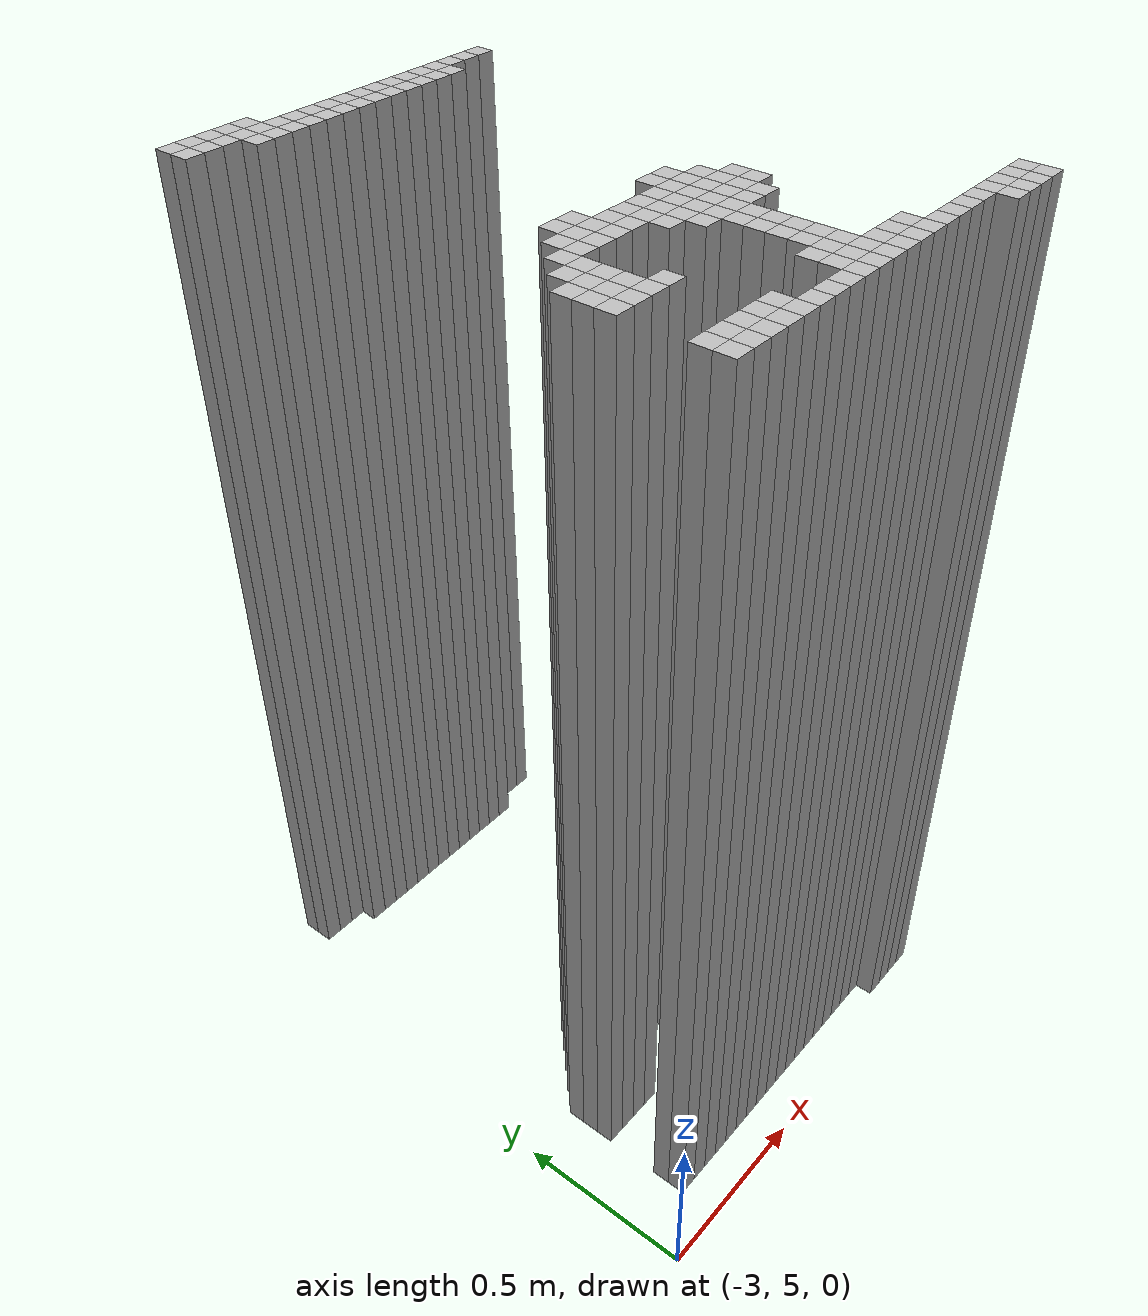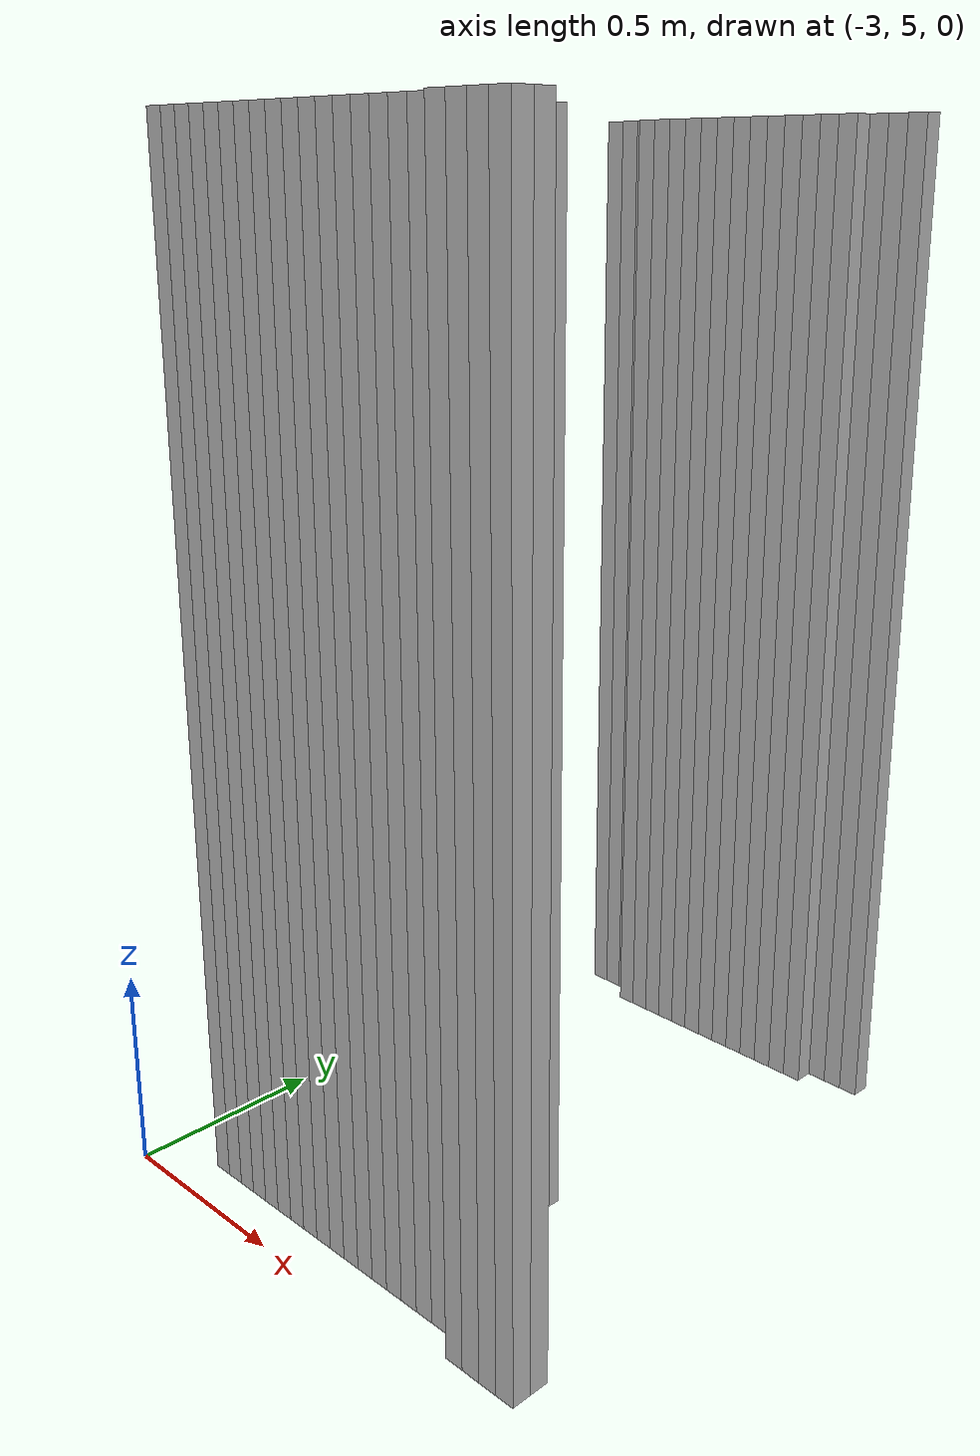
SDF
<sdf version="1.9">
 <world name="map_world">
  <model name="wall_167_22">
   <static>true</static>
   <pose>-2.811 6.580 1.250 0 0 0</pose>
   <link name="link">
    <collision name="collision"><geometry><box><size>0.050 0.050 2.500</size></box></geometry></collision>
    <visual name="visual"><geometry><box><size>0.050 0.050 2.500</size></box></geometry></visual>
   </link>
  </model>
  <model name="wall_168_22">
   <static>true</static>
   <pose>-2.761 6.580 1.250 0 0 0</pose>
   <link name="link">
    <collision name="collision"><geometry><box><size>0.050 0.050 2.500</size></box></geometry></collision>
    <visual name="visual"><geometry><box><size>0.050 0.050 2.500</size></box></geometry></visual>
   </link>
  </model>
  <model name="wall_169_22">
   <static>true</static>
   <pose>-2.711 6.580 1.250 0 0 0</pose>
   <link name="link">
    <collision name="collision"><geometry><box><size>0.050 0.050 2.500</size></box></geometry></collision>
    <visual name="visual"><geometry><box><size>0.050 0.050 2.500</size></box></geometry></visual>
   </link>
  </model>
  <model name="wall_170_22">
   <static>true</static>
   <pose>-2.661 6.580 1.250 0 0 0</pose>
   <link name="link">
    <collision name="collision"><geometry><box><size>0.050 0.050 2.500</size></box></geometry></collision>
    <visual name="visual"><geometry><box><size>0.050 0.050 2.500</size></box></geometry></visual>
   </link>
  </model>
  <model name="wall_171_22">
   <static>true</static>
   <pose>-2.611 6.580 1.250 0 0 0</pose>
   <link name="link">
    <collision name="collision"><geometry><box><size>0.050 0.050 2.500</size></box></geometry></collision>
    <visual name="visual"><geometry><box><size>0.050 0.050 2.500</size></box></geometry></visual>
   </link>
  </model>
  <model name="wall_167_23">
   <static>true</static>
   <pose>-2.811 6.530 1.250 0 0 0</pose>
   <link name="link">
    <collision name="collision"><geometry><box><size>0.050 0.050 2.500</size></box></geometry></collision>
    <visual name="visual"><geometry><box><size>0.050 0.050 2.500</size></box></geometry></visual>
   </link>
  </model>
  <model name="wall_168_23">
   <static>true</static>
   <pose>-2.761 6.530 1.250 0 0 0</pose>
   <link name="link">
    <collision name="collision"><geometry><box><size>0.050 0.050 2.500</size></box></geometry></collision>
    <visual name="visual"><geometry><box><size>0.050 0.050 2.500</size></box></geometry></visual>
   </link>
  </model>
  <model name="wall_169_23">
   <static>true</static>
   <pose>-2.711 6.530 1.250 0 0 0</pose>
   <link name="link">
    <collision name="collision"><geometry><box><size>0.050 0.050 2.500</size></box></geometry></collision>
    <visual name="visual"><geometry><box><size>0.050 0.050 2.500</size></box></geometry></visual>
   </link>
  </model>
  <model name="wall_170_23">
   <static>true</static>
   <pose>-2.661 6.530 1.250 0 0 0</pose>
   <link name="link">
    <collision name="collision"><geometry><box><size>0.050 0.050 2.500</size></box></geometry></collision>
    <visual name="visual"><geometry><box><size>0.050 0.050 2.500</size></box></geometry></visual>
   </link>
  </model>
  <model name="wall_171_23">
   <static>true</static>
   <pose>-2.611 6.530 1.250 0 0 0</pose>
   <link name="link">
    <collision name="collision"><geometry><box><size>0.050 0.050 2.500</size></box></geometry></collision>
    <visual name="visual"><geometry><box><size>0.050 0.050 2.500</size></box></geometry></visual>
   </link>
  </model>
  <model name="wall_172_23">
   <static>true</static>
   <pose>-2.561 6.530 1.250 0 0 0</pose>
   <link name="link">
    <collision name="collision"><geometry><box><size>0.050 0.050 2.500</size></box></geometry></collision>
    <visual name="visual"><geometry><box><size>0.050 0.050 2.500</size></box></geometry></visual>
   </link>
  </model>
  <model name="wall_173_23">
   <static>true</static>
   <pose>-2.511 6.530 1.250 0 0 0</pose>
   <link name="link">
    <collision name="collision"><geometry><box><size>0.050 0.050 2.500</size></box></geometry></collision>
    <visual name="visual"><geometry><box><size>0.050 0.050 2.500</size></box></geometry></visual>
   </link>
  </model>
  <model name="wall_174_23">
   <static>true</static>
   <pose>-2.461 6.530 1.250 0 0 0</pose>
   <link name="link">
    <collision name="collision"><geometry><box><size>0.050 0.050 2.500</size></box></geometry></collision>
    <visual name="visual"><geometry><box><size>0.050 0.050 2.500</size></box></geometry></visual>
   </link>
  </model>
  <model name="wall_175_23">
   <static>true</static>
   <pose>-2.411 6.530 1.250 0 0 0</pose>
   <link name="link">
    <collision name="collision"><geometry><box><size>0.050 0.050 2.500</size></box></geometry></collision>
    <visual name="visual"><geometry><box><size>0.050 0.050 2.500</size></box></geometry></visual>
   </link>
  </model>
  <model name="wall_176_23">
   <static>true</static>
   <pose>-2.361 6.530 1.250 0 0 0</pose>
   <link name="link">
    <collision name="collision"><geometry><box><size>0.050 0.050 2.500</size></box></geometry></collision>
    <visual name="visual"><geometry><box><size>0.050 0.050 2.500</size></box></geometry></visual>
   </link>
  </model>
  <model name="wall_177_23">
   <static>true</static>
   <pose>-2.311 6.530 1.250 0 0 0</pose>
   <link name="link">
    <collision name="collision"><geometry><box><size>0.050 0.050 2.500</size></box></geometry></collision>
    <visual name="visual"><geometry><box><size>0.050 0.050 2.500</size></box></geometry></visual>
   </link>
  </model>
  <model name="wall_178_23">
   <static>true</static>
   <pose>-2.261 6.530 1.250 0 0 0</pose>
   <link name="link">
    <collision name="collision"><geometry><box><size>0.050 0.050 2.500</size></box></geometry></collision>
    <visual name="visual"><geometry><box><size>0.050 0.050 2.500</size></box></geometry></visual>
   </link>
  </model>
  <model name="wall_179_23">
   <static>true</static>
   <pose>-2.211 6.530 1.250 0 0 0</pose>
   <link name="link">
    <collision name="collision"><geometry><box><size>0.050 0.050 2.500</size></box></geometry></collision>
    <visual name="visual"><geometry><box><size>0.050 0.050 2.500</size></box></geometry></visual>
   </link>
  </model>
  <model name="wall_180_23">
   <static>true</static>
   <pose>-2.161 6.530 1.250 0 0 0</pose>
   <link name="link">
    <collision name="collision"><geometry><box><size>0.050 0.050 2.500</size></box></geometry></collision>
    <visual name="visual"><geometry><box><size>0.050 0.050 2.500</size></box></geometry></visual>
   </link>
  </model>
  <model name="wall_181_23">
   <static>true</static>
   <pose>-2.111 6.530 1.250 0 0 0</pose>
   <link name="link">
    <collision name="collision"><geometry><box><size>0.050 0.050 2.500</size></box></geometry></collision>
    <visual name="visual"><geometry><box><size>0.050 0.050 2.500</size></box></geometry></visual>
   </link>
  </model>
  <model name="wall_182_23">
   <static>true</static>
   <pose>-2.061 6.530 1.250 0 0 0</pose>
   <link name="link">
    <collision name="collision"><geometry><box><size>0.050 0.050 2.500</size></box></geometry></collision>
    <visual name="visual"><geometry><box><size>0.050 0.050 2.500</size></box></geometry></visual>
   </link>
  </model>
  <model name="wall_183_23">
   <static>true</static>
   <pose>-2.011 6.530 1.250 0 0 0</pose>
   <link name="link">
    <collision name="collision"><geometry><box><size>0.050 0.050 2.500</size></box></geometry></collision>
    <visual name="visual"><geometry><box><size>0.050 0.050 2.500</size></box></geometry></visual>
   </link>
  </model>
  <model name="wall_184_23">
   <static>true</static>
   <pose>-1.961 6.530 1.250 0 0 0</pose>
   <link name="link">
    <collision name="collision"><geometry><box><size>0.050 0.050 2.500</size></box></geometry></collision>
    <visual name="visual"><geometry><box><size>0.050 0.050 2.500</size></box></geometry></visual>
   </link>
  </model>
  <model name="wall_185_23">
   <static>true</static>
   <pose>-1.911 6.530 1.250 0 0 0</pose>
   <link name="link">
    <collision name="collision"><geometry><box><size>0.050 0.050 2.500</size></box></geometry></collision>
    <visual name="visual"><geometry><box><size>0.050 0.050 2.500</size></box></geometry></visual>
   </link>
  </model>
  <model name="wall_170_24">
   <static>true</static>
   <pose>-2.661 6.480 1.250 0 0 0</pose>
   <link name="link">
    <collision name="collision"><geometry><box><size>0.050 0.050 2.500</size></box></geometry></collision>
    <visual name="visual"><geometry><box><size>0.050 0.050 2.500</size></box></geometry></visual>
   </link>
  </model>
  <model name="wall_171_24">
   <static>true</static>
   <pose>-2.611 6.480 1.250 0 0 0</pose>
   <link name="link">
    <collision name="collision"><geometry><box><size>0.050 0.050 2.500</size></box></geometry></collision>
    <visual name="visual"><geometry><box><size>0.050 0.050 2.500</size></box></geometry></visual>
   </link>
  </model>
  <model name="wall_172_24">
   <static>true</static>
   <pose>-2.561 6.480 1.250 0 0 0</pose>
   <link name="link">
    <collision name="collision"><geometry><box><size>0.050 0.050 2.500</size></box></geometry></collision>
    <visual name="visual"><geometry><box><size>0.050 0.050 2.500</size></box></geometry></visual>
   </link>
  </model>
  <model name="wall_173_24">
   <static>true</static>
   <pose>-2.511 6.480 1.250 0 0 0</pose>
   <link name="link">
    <collision name="collision"><geometry><box><size>0.050 0.050 2.500</size></box></geometry></collision>
    <visual name="visual"><geometry><box><size>0.050 0.050 2.500</size></box></geometry></visual>
   </link>
  </model>
  <model name="wall_174_24">
   <static>true</static>
   <pose>-2.461 6.480 1.250 0 0 0</pose>
   <link name="link">
    <collision name="collision"><geometry><box><size>0.050 0.050 2.500</size></box></geometry></collision>
    <visual name="visual"><geometry><box><size>0.050 0.050 2.500</size></box></geometry></visual>
   </link>
  </model>
  <model name="wall_175_24">
   <static>true</static>
   <pose>-2.411 6.480 1.250 0 0 0</pose>
   <link name="link">
    <collision name="collision"><geometry><box><size>0.050 0.050 2.500</size></box></geometry></collision>
    <visual name="visual"><geometry><box><size>0.050 0.050 2.500</size></box></geometry></visual>
   </link>
  </model>
  <model name="wall_176_24">
   <static>true</static>
   <pose>-2.361 6.480 1.250 0 0 0</pose>
   <link name="link">
    <collision name="collision"><geometry><box><size>0.050 0.050 2.500</size></box></geometry></collision>
    <visual name="visual"><geometry><box><size>0.050 0.050 2.500</size></box></geometry></visual>
   </link>
  </model>
  <model name="wall_177_24">
   <static>true</static>
   <pose>-2.311 6.480 1.250 0 0 0</pose>
   <link name="link">
    <collision name="collision"><geometry><box><size>0.050 0.050 2.500</size></box></geometry></collision>
    <visual name="visual"><geometry><box><size>0.050 0.050 2.500</size></box></geometry></visual>
   </link>
  </model>
  <model name="wall_178_24">
   <static>true</static>
   <pose>-2.261 6.480 1.250 0 0 0</pose>
   <link name="link">
    <collision name="collision"><geometry><box><size>0.050 0.050 2.500</size></box></geometry></collision>
    <visual name="visual"><geometry><box><size>0.050 0.050 2.500</size></box></geometry></visual>
   </link>
  </model>
  <model name="wall_179_24">
   <static>true</static>
   <pose>-2.211 6.480 1.250 0 0 0</pose>
   <link name="link">
    <collision name="collision"><geometry><box><size>0.050 0.050 2.500</size></box></geometry></collision>
    <visual name="visual"><geometry><box><size>0.050 0.050 2.500</size></box></geometry></visual>
   </link>
  </model>
  <model name="wall_180_24">
   <static>true</static>
   <pose>-2.161 6.480 1.250 0 0 0</pose>
   <link name="link">
    <collision name="collision"><geometry><box><size>0.050 0.050 2.500</size></box></geometry></collision>
    <visual name="visual"><geometry><box><size>0.050 0.050 2.500</size></box></geometry></visual>
   </link>
  </model>
  <model name="wall_181_24">
   <static>true</static>
   <pose>-2.111 6.480 1.250 0 0 0</pose>
   <link name="link">
    <collision name="collision"><geometry><box><size>0.050 0.050 2.500</size></box></geometry></collision>
    <visual name="visual"><geometry><box><size>0.050 0.050 2.500</size></box></geometry></visual>
   </link>
  </model>
  <model name="wall_182_24">
   <static>true</static>
   <pose>-2.061 6.480 1.250 0 0 0</pose>
   <link name="link">
    <collision name="collision"><geometry><box><size>0.050 0.050 2.500</size></box></geometry></collision>
    <visual name="visual"><geometry><box><size>0.050 0.050 2.500</size></box></geometry></visual>
   </link>
  </model>
  <model name="wall_171_40">
   <static>true</static>
   <pose>-2.611 5.680 1.250 0 0 0</pose>
   <link name="link">
    <collision name="collision"><geometry><box><size>0.050 0.050 2.500</size></box></geometry></collision>
    <visual name="visual"><geometry><box><size>0.050 0.050 2.500</size></box></geometry></visual>
   </link>
  </model>
  <model name="wall_172_40">
   <static>true</static>
   <pose>-2.561 5.680 1.250 0 0 0</pose>
   <link name="link">
    <collision name="collision"><geometry><box><size>0.050 0.050 2.500</size></box></geometry></collision>
    <visual name="visual"><geometry><box><size>0.050 0.050 2.500</size></box></geometry></visual>
   </link>
  </model>
  <model name="wall_177_40">
   <static>true</static>
   <pose>-2.311 5.680 1.250 0 0 0</pose>
   <link name="link">
    <collision name="collision"><geometry><box><size>0.050 0.050 2.500</size></box></geometry></collision>
    <visual name="visual"><geometry><box><size>0.050 0.050 2.500</size></box></geometry></visual>
   </link>
  </model>
  <model name="wall_178_40">
   <static>true</static>
   <pose>-2.261 5.680 1.250 0 0 0</pose>
   <link name="link">
    <collision name="collision"><geometry><box><size>0.050 0.050 2.500</size></box></geometry></collision>
    <visual name="visual"><geometry><box><size>0.050 0.050 2.500</size></box></geometry></visual>
   </link>
  </model>
  <model name="wall_170_41">
   <static>true</static>
   <pose>-2.661 5.630 1.250 0 0 0</pose>
   <link name="link">
    <collision name="collision"><geometry><box><size>0.050 0.050 2.500</size></box></geometry></collision>
    <visual name="visual"><geometry><box><size>0.050 0.050 2.500</size></box></geometry></visual>
   </link>
  </model>
  <model name="wall_171_41">
   <static>true</static>
   <pose>-2.611 5.630 1.250 0 0 0</pose>
   <link name="link">
    <collision name="collision"><geometry><box><size>0.050 0.050 2.500</size></box></geometry></collision>
    <visual name="visual"><geometry><box><size>0.050 0.050 2.500</size></box></geometry></visual>
   </link>
  </model>
  <model name="wall_172_41">
   <static>true</static>
   <pose>-2.561 5.630 1.250 0 0 0</pose>
   <link name="link">
    <collision name="collision"><geometry><box><size>0.050 0.050 2.500</size></box></geometry></collision>
    <visual name="visual"><geometry><box><size>0.050 0.050 2.500</size></box></geometry></visual>
   </link>
  </model>
  <model name="wall_173_41">
   <static>true</static>
   <pose>-2.511 5.630 1.250 0 0 0</pose>
   <link name="link">
    <collision name="collision"><geometry><box><size>0.050 0.050 2.500</size></box></geometry></collision>
    <visual name="visual"><geometry><box><size>0.050 0.050 2.500</size></box></geometry></visual>
   </link>
  </model>
  <model name="wall_174_41">
   <static>true</static>
   <pose>-2.461 5.630 1.250 0 0 0</pose>
   <link name="link">
    <collision name="collision"><geometry><box><size>0.050 0.050 2.500</size></box></geometry></collision>
    <visual name="visual"><geometry><box><size>0.050 0.050 2.500</size></box></geometry></visual>
   </link>
  </model>
  <model name="wall_175_41">
   <static>true</static>
   <pose>-2.411 5.630 1.250 0 0 0</pose>
   <link name="link">
    <collision name="collision"><geometry><box><size>0.050 0.050 2.500</size></box></geometry></collision>
    <visual name="visual"><geometry><box><size>0.050 0.050 2.500</size></box></geometry></visual>
   </link>
  </model>
  <model name="wall_176_41">
   <static>true</static>
   <pose>-2.361 5.630 1.250 0 0 0</pose>
   <link name="link">
    <collision name="collision"><geometry><box><size>0.050 0.050 2.500</size></box></geometry></collision>
    <visual name="visual"><geometry><box><size>0.050 0.050 2.500</size></box></geometry></visual>
   </link>
  </model>
  <model name="wall_177_41">
   <static>true</static>
   <pose>-2.311 5.630 1.250 0 0 0</pose>
   <link name="link">
    <collision name="collision"><geometry><box><size>0.050 0.050 2.500</size></box></geometry></collision>
    <visual name="visual"><geometry><box><size>0.050 0.050 2.500</size></box></geometry></visual>
   </link>
  </model>
  <model name="wall_178_41">
   <static>true</static>
   <pose>-2.261 5.630 1.250 0 0 0</pose>
   <link name="link">
    <collision name="collision"><geometry><box><size>0.050 0.050 2.500</size></box></geometry></collision>
    <visual name="visual"><geometry><box><size>0.050 0.050 2.500</size></box></geometry></visual>
   </link>
  </model>
  <model name="wall_179_41">
   <static>true</static>
   <pose>-2.211 5.630 1.250 0 0 0</pose>
   <link name="link">
    <collision name="collision"><geometry><box><size>0.050 0.050 2.500</size></box></geometry></collision>
    <visual name="visual"><geometry><box><size>0.050 0.050 2.500</size></box></geometry></visual>
   </link>
  </model>
  <model name="wall_169_42">
   <static>true</static>
   <pose>-2.711 5.580 1.250 0 0 0</pose>
   <link name="link">
    <collision name="collision"><geometry><box><size>0.050 0.050 2.500</size></box></geometry></collision>
    <visual name="visual"><geometry><box><size>0.050 0.050 2.500</size></box></geometry></visual>
   </link>
  </model>
  <model name="wall_170_42">
   <static>true</static>
   <pose>-2.661 5.580 1.250 0 0 0</pose>
   <link name="link">
    <collision name="collision"><geometry><box><size>0.050 0.050 2.500</size></box></geometry></collision>
    <visual name="visual"><geometry><box><size>0.050 0.050 2.500</size></box></geometry></visual>
   </link>
  </model>
  <model name="wall_171_42">
   <static>true</static>
   <pose>-2.611 5.580 1.250 0 0 0</pose>
   <link name="link">
    <collision name="collision"><geometry><box><size>0.050 0.050 2.500</size></box></geometry></collision>
    <visual name="visual"><geometry><box><size>0.050 0.050 2.500</size></box></geometry></visual>
   </link>
  </model>
  <model name="wall_172_42">
   <static>true</static>
   <pose>-2.561 5.580 1.250 0 0 0</pose>
   <link name="link">
    <collision name="collision"><geometry><box><size>0.050 0.050 2.500</size></box></geometry></collision>
    <visual name="visual"><geometry><box><size>0.050 0.050 2.500</size></box></geometry></visual>
   </link>
  </model>
  <model name="wall_173_42">
   <static>true</static>
   <pose>-2.511 5.580 1.250 0 0 0</pose>
   <link name="link">
    <collision name="collision"><geometry><box><size>0.050 0.050 2.500</size></box></geometry></collision>
    <visual name="visual"><geometry><box><size>0.050 0.050 2.500</size></box></geometry></visual>
   </link>
  </model>
  <model name="wall_174_42">
   <static>true</static>
   <pose>-2.461 5.580 1.250 0 0 0</pose>
   <link name="link">
    <collision name="collision"><geometry><box><size>0.050 0.050 2.500</size></box></geometry></collision>
    <visual name="visual"><geometry><box><size>0.050 0.050 2.500</size></box></geometry></visual>
   </link>
  </model>
  <model name="wall_175_42">
   <static>true</static>
   <pose>-2.411 5.580 1.250 0 0 0</pose>
   <link name="link">
    <collision name="collision"><geometry><box><size>0.050 0.050 2.500</size></box></geometry></collision>
    <visual name="visual"><geometry><box><size>0.050 0.050 2.500</size></box></geometry></visual>
   </link>
  </model>
  <model name="wall_176_42">
   <static>true</static>
   <pose>-2.361 5.580 1.250 0 0 0</pose>
   <link name="link">
    <collision name="collision"><geometry><box><size>0.050 0.050 2.500</size></box></geometry></collision>
    <visual name="visual"><geometry><box><size>0.050 0.050 2.500</size></box></geometry></visual>
   </link>
  </model>
  <model name="wall_177_42">
   <static>true</static>
   <pose>-2.311 5.580 1.250 0 0 0</pose>
   <link name="link">
    <collision name="collision"><geometry><box><size>0.050 0.050 2.500</size></box></geometry></collision>
    <visual name="visual"><geometry><box><size>0.050 0.050 2.500</size></box></geometry></visual>
   </link>
  </model>
  <model name="wall_178_42">
   <static>true</static>
   <pose>-2.261 5.580 1.250 0 0 0</pose>
   <link name="link">
    <collision name="collision"><geometry><box><size>0.050 0.050 2.500</size></box></geometry></collision>
    <visual name="visual"><geometry><box><size>0.050 0.050 2.500</size></box></geometry></visual>
   </link>
  </model>
  <model name="wall_179_42">
   <static>true</static>
   <pose>-2.211 5.580 1.250 0 0 0</pose>
   <link name="link">
    <collision name="collision"><geometry><box><size>0.050 0.050 2.500</size></box></geometry></collision>
    <visual name="visual"><geometry><box><size>0.050 0.050 2.500</size></box></geometry></visual>
   </link>
  </model>
  <model name="wall_180_42">
   <static>true</static>
   <pose>-2.161 5.580 1.250 0 0 0</pose>
   <link name="link">
    <collision name="collision"><geometry><box><size>0.050 0.050 2.500</size></box></geometry></collision>
    <visual name="visual"><geometry><box><size>0.050 0.050 2.500</size></box></geometry></visual>
   </link>
  </model>
  <model name="wall_168_43">
   <static>true</static>
   <pose>-2.761 5.530 1.250 0 0 0</pose>
   <link name="link">
    <collision name="collision"><geometry><box><size>0.050 0.050 2.500</size></box></geometry></collision>
    <visual name="visual"><geometry><box><size>0.050 0.050 2.500</size></box></geometry></visual>
   </link>
  </model>
  <model name="wall_169_43">
   <static>true</static>
   <pose>-2.711 5.530 1.250 0 0 0</pose>
   <link name="link">
    <collision name="collision"><geometry><box><size>0.050 0.050 2.500</size></box></geometry></collision>
    <visual name="visual"><geometry><box><size>0.050 0.050 2.500</size></box></geometry></visual>
   </link>
  </model>
  <model name="wall_174_43">
   <static>true</static>
   <pose>-2.461 5.530 1.250 0 0 0</pose>
   <link name="link">
    <collision name="collision"><geometry><box><size>0.050 0.050 2.500</size></box></geometry></collision>
    <visual name="visual"><geometry><box><size>0.050 0.050 2.500</size></box></geometry></visual>
   </link>
  </model>
  <model name="wall_175_43">
   <static>true</static>
   <pose>-2.411 5.530 1.250 0 0 0</pose>
   <link name="link">
    <collision name="collision"><geometry><box><size>0.050 0.050 2.500</size></box></geometry></collision>
    <visual name="visual"><geometry><box><size>0.050 0.050 2.500</size></box></geometry></visual>
   </link>
  </model>
  <model name="wall_176_43">
   <static>true</static>
   <pose>-2.361 5.530 1.250 0 0 0</pose>
   <link name="link">
    <collision name="collision"><geometry><box><size>0.050 0.050 2.500</size></box></geometry></collision>
    <visual name="visual"><geometry><box><size>0.050 0.050 2.500</size></box></geometry></visual>
   </link>
  </model>
  <model name="wall_177_43">
   <static>true</static>
   <pose>-2.311 5.530 1.250 0 0 0</pose>
   <link name="link">
    <collision name="collision"><geometry><box><size>0.050 0.050 2.500</size></box></geometry></collision>
    <visual name="visual"><geometry><box><size>0.050 0.050 2.500</size></box></geometry></visual>
   </link>
  </model>
  <model name="wall_178_43">
   <static>true</static>
   <pose>-2.261 5.530 1.250 0 0 0</pose>
   <link name="link">
    <collision name="collision"><geometry><box><size>0.050 0.050 2.500</size></box></geometry></collision>
    <visual name="visual"><geometry><box><size>0.050 0.050 2.500</size></box></geometry></visual>
   </link>
  </model>
  <model name="wall_179_43">
   <static>true</static>
   <pose>-2.211 5.530 1.250 0 0 0</pose>
   <link name="link">
    <collision name="collision"><geometry><box><size>0.050 0.050 2.500</size></box></geometry></collision>
    <visual name="visual"><geometry><box><size>0.050 0.050 2.500</size></box></geometry></visual>
   </link>
  </model>
  <model name="wall_180_43">
   <static>true</static>
   <pose>-2.161 5.530 1.250 0 0 0</pose>
   <link name="link">
    <collision name="collision"><geometry><box><size>0.050 0.050 2.500</size></box></geometry></collision>
    <visual name="visual"><geometry><box><size>0.050 0.050 2.500</size></box></geometry></visual>
   </link>
  </model>
  <model name="wall_167_44">
   <static>true</static>
   <pose>-2.811 5.480 1.250 0 0 0</pose>
   <link name="link">
    <collision name="collision"><geometry><box><size>0.050 0.050 2.500</size></box></geometry></collision>
    <visual name="visual"><geometry><box><size>0.050 0.050 2.500</size></box></geometry></visual>
   </link>
  </model>
  <model name="wall_168_44">
   <static>true</static>
   <pose>-2.761 5.480 1.250 0 0 0</pose>
   <link name="link">
    <collision name="collision"><geometry><box><size>0.050 0.050 2.500</size></box></geometry></collision>
    <visual name="visual"><geometry><box><size>0.050 0.050 2.500</size></box></geometry></visual>
   </link>
  </model>
  <model name="wall_169_44">
   <static>true</static>
   <pose>-2.711 5.480 1.250 0 0 0</pose>
   <link name="link">
    <collision name="collision"><geometry><box><size>0.050 0.050 2.500</size></box></geometry></collision>
    <visual name="visual"><geometry><box><size>0.050 0.050 2.500</size></box></geometry></visual>
   </link>
  </model>
  <model name="wall_175_44">
   <static>true</static>
   <pose>-2.411 5.480 1.250 0 0 0</pose>
   <link name="link">
    <collision name="collision"><geometry><box><size>0.050 0.050 2.500</size></box></geometry></collision>
    <visual name="visual"><geometry><box><size>0.050 0.050 2.500</size></box></geometry></visual>
   </link>
  </model>
  <model name="wall_176_44">
   <static>true</static>
   <pose>-2.361 5.480 1.250 0 0 0</pose>
   <link name="link">
    <collision name="collision"><geometry><box><size>0.050 0.050 2.500</size></box></geometry></collision>
    <visual name="visual"><geometry><box><size>0.050 0.050 2.500</size></box></geometry></visual>
   </link>
  </model>
  <model name="wall_177_44">
   <static>true</static>
   <pose>-2.311 5.480 1.250 0 0 0</pose>
   <link name="link">
    <collision name="collision"><geometry><box><size>0.050 0.050 2.500</size></box></geometry></collision>
    <visual name="visual"><geometry><box><size>0.050 0.050 2.500</size></box></geometry></visual>
   </link>
  </model>
  <model name="wall_178_44">
   <static>true</static>
   <pose>-2.261 5.480 1.250 0 0 0</pose>
   <link name="link">
    <collision name="collision"><geometry><box><size>0.050 0.050 2.500</size></box></geometry></collision>
    <visual name="visual"><geometry><box><size>0.050 0.050 2.500</size></box></geometry></visual>
   </link>
  </model>
  <model name="wall_179_44">
   <static>true</static>
   <pose>-2.211 5.480 1.250 0 0 0</pose>
   <link name="link">
    <collision name="collision"><geometry><box><size>0.050 0.050 2.500</size></box></geometry></collision>
    <visual name="visual"><geometry><box><size>0.050 0.050 2.500</size></box></geometry></visual>
   </link>
  </model>
  <model name="wall_167_45">
   <static>true</static>
   <pose>-2.811 5.430 1.250 0 0 0</pose>
   <link name="link">
    <collision name="collision"><geometry><box><size>0.050 0.050 2.500</size></box></geometry></collision>
    <visual name="visual"><geometry><box><size>0.050 0.050 2.500</size></box></geometry></visual>
   </link>
  </model>
  <model name="wall_168_45">
   <static>true</static>
   <pose>-2.761 5.430 1.250 0 0 0</pose>
   <link name="link">
    <collision name="collision"><geometry><box><size>0.050 0.050 2.500</size></box></geometry></collision>
    <visual name="visual"><geometry><box><size>0.050 0.050 2.500</size></box></geometry></visual>
   </link>
  </model>
  <model name="wall_169_45">
   <static>true</static>
   <pose>-2.711 5.430 1.250 0 0 0</pose>
   <link name="link">
    <collision name="collision"><geometry><box><size>0.050 0.050 2.500</size></box></geometry></collision>
    <visual name="visual"><geometry><box><size>0.050 0.050 2.500</size></box></geometry></visual>
   </link>
  </model>
  <model name="wall_176_45">
   <static>true</static>
   <pose>-2.361 5.430 1.250 0 0 0</pose>
   <link name="link">
    <collision name="collision"><geometry><box><size>0.050 0.050 2.500</size></box></geometry></collision>
    <visual name="visual"><geometry><box><size>0.050 0.050 2.500</size></box></geometry></visual>
   </link>
  </model>
  <model name="wall_177_45">
   <static>true</static>
   <pose>-2.311 5.430 1.250 0 0 0</pose>
   <link name="link">
    <collision name="collision"><geometry><box><size>0.050 0.050 2.500</size></box></geometry></collision>
    <visual name="visual"><geometry><box><size>0.050 0.050 2.500</size></box></geometry></visual>
   </link>
  </model>
  <model name="wall_167_46">
   <static>true</static>
   <pose>-2.811 5.380 1.250 0 0 0</pose>
   <link name="link">
    <collision name="collision"><geometry><box><size>0.050 0.050 2.500</size></box></geometry></collision>
    <visual name="visual"><geometry><box><size>0.050 0.050 2.500</size></box></geometry></visual>
   </link>
  </model>
  <model name="wall_168_46">
   <static>true</static>
   <pose>-2.761 5.380 1.250 0 0 0</pose>
   <link name="link">
    <collision name="collision"><geometry><box><size>0.050 0.050 2.500</size></box></geometry></collision>
    <visual name="visual"><geometry><box><size>0.050 0.050 2.500</size></box></geometry></visual>
   </link>
  </model>
  <model name="wall_169_46">
   <static>true</static>
   <pose>-2.711 5.380 1.250 0 0 0</pose>
   <link name="link">
    <collision name="collision"><geometry><box><size>0.050 0.050 2.500</size></box></geometry></collision>
    <visual name="visual"><geometry><box><size>0.050 0.050 2.500</size></box></geometry></visual>
   </link>
  </model>
  <model name="wall_170_46">
   <static>true</static>
   <pose>-2.661 5.380 1.250 0 0 0</pose>
   <link name="link">
    <collision name="collision"><geometry><box><size>0.050 0.050 2.500</size></box></geometry></collision>
    <visual name="visual"><geometry><box><size>0.050 0.050 2.500</size></box></geometry></visual>
   </link>
  </model>
  <model name="wall_176_46">
   <static>true</static>
   <pose>-2.361 5.380 1.250 0 0 0</pose>
   <link name="link">
    <collision name="collision"><geometry><box><size>0.050 0.050 2.500</size></box></geometry></collision>
    <visual name="visual"><geometry><box><size>0.050 0.050 2.500</size></box></geometry></visual>
   </link>
  </model>
  <model name="wall_177_46">
   <static>true</static>
   <pose>-2.311 5.380 1.250 0 0 0</pose>
   <link name="link">
    <collision name="collision"><geometry><box><size>0.050 0.050 2.500</size></box></geometry></collision>
    <visual name="visual"><geometry><box><size>0.050 0.050 2.500</size></box></geometry></visual>
   </link>
  </model>
  <model name="wall_176_47">
   <static>true</static>
   <pose>-2.361 5.330 1.250 0 0 0</pose>
   <link name="link">
    <collision name="collision"><geometry><box><size>0.050 0.050 2.500</size></box></geometry></collision>
    <visual name="visual"><geometry><box><size>0.050 0.050 2.500</size></box></geometry></visual>
   </link>
  </model>
  <model name="wall_177_47">
   <static>true</static>
   <pose>-2.311 5.330 1.250 0 0 0</pose>
   <link name="link">
    <collision name="collision"><geometry><box><size>0.050 0.050 2.500</size></box></geometry></collision>
    <visual name="visual"><geometry><box><size>0.050 0.050 2.500</size></box></geometry></visual>
   </link>
  </model>
  <model name="wall_176_48">
   <static>true</static>
   <pose>-2.361 5.280 1.250 0 0 0</pose>
   <link name="link">
    <collision name="collision"><geometry><box><size>0.050 0.050 2.500</size></box></geometry></collision>
    <visual name="visual"><geometry><box><size>0.050 0.050 2.500</size></box></geometry></visual>
   </link>
  </model>
  <model name="wall_177_48">
   <static>true</static>
   <pose>-2.311 5.280 1.250 0 0 0</pose>
   <link name="link">
    <collision name="collision"><geometry><box><size>0.050 0.050 2.500</size></box></geometry></collision>
    <visual name="visual"><geometry><box><size>0.050 0.050 2.500</size></box></geometry></visual>
   </link>
  </model>
  <model name="wall_175_49">
   <static>true</static>
   <pose>-2.411 5.230 1.250 0 0 0</pose>
   <link name="link">
    <collision name="collision"><geometry><box><size>0.050 0.050 2.500</size></box></geometry></collision>
    <visual name="visual"><geometry><box><size>0.050 0.050 2.500</size></box></geometry></visual>
   </link>
  </model>
  <model name="wall_176_49">
   <static>true</static>
   <pose>-2.361 5.230 1.250 0 0 0</pose>
   <link name="link">
    <collision name="collision"><geometry><box><size>0.050 0.050 2.500</size></box></geometry></collision>
    <visual name="visual"><geometry><box><size>0.050 0.050 2.500</size></box></geometry></visual>
   </link>
  </model>
  <model name="wall_177_49">
   <static>true</static>
   <pose>-2.311 5.230 1.250 0 0 0</pose>
   <link name="link">
    <collision name="collision"><geometry><box><size>0.050 0.050 2.500</size></box></geometry></collision>
    <visual name="visual"><geometry><box><size>0.050 0.050 2.500</size></box></geometry></visual>
   </link>
  </model>
  <model name="wall_167_50">
   <static>true</static>
   <pose>-2.811 5.180 1.250 0 0 0</pose>
   <link name="link">
    <collision name="collision"><geometry><box><size>0.050 0.050 2.500</size></box></geometry></collision>
    <visual name="visual"><geometry><box><size>0.050 0.050 2.500</size></box></geometry></visual>
   </link>
  </model>
  <model name="wall_168_50">
   <static>true</static>
   <pose>-2.761 5.180 1.250 0 0 0</pose>
   <link name="link">
    <collision name="collision"><geometry><box><size>0.050 0.050 2.500</size></box></geometry></collision>
    <visual name="visual"><geometry><box><size>0.050 0.050 2.500</size></box></geometry></visual>
   </link>
  </model>
  <model name="wall_169_50">
   <static>true</static>
   <pose>-2.711 5.180 1.250 0 0 0</pose>
   <link name="link">
    <collision name="collision"><geometry><box><size>0.050 0.050 2.500</size></box></geometry></collision>
    <visual name="visual"><geometry><box><size>0.050 0.050 2.500</size></box></geometry></visual>
   </link>
  </model>
  <model name="wall_170_50">
   <static>true</static>
   <pose>-2.661 5.180 1.250 0 0 0</pose>
   <link name="link">
    <collision name="collision"><geometry><box><size>0.050 0.050 2.500</size></box></geometry></collision>
    <visual name="visual"><geometry><box><size>0.050 0.050 2.500</size></box></geometry></visual>
   </link>
  </model>
  <model name="wall_171_50">
   <static>true</static>
   <pose>-2.611 5.180 1.250 0 0 0</pose>
   <link name="link">
    <collision name="collision"><geometry><box><size>0.050 0.050 2.500</size></box></geometry></collision>
    <visual name="visual"><geometry><box><size>0.050 0.050 2.500</size></box></geometry></visual>
   </link>
  </model>
  <model name="wall_175_50">
   <static>true</static>
   <pose>-2.411 5.180 1.250 0 0 0</pose>
   <link name="link">
    <collision name="collision"><geometry><box><size>0.050 0.050 2.500</size></box></geometry></collision>
    <visual name="visual"><geometry><box><size>0.050 0.050 2.500</size></box></geometry></visual>
   </link>
  </model>
  <model name="wall_176_50">
   <static>true</static>
   <pose>-2.361 5.180 1.250 0 0 0</pose>
   <link name="link">
    <collision name="collision"><geometry><box><size>0.050 0.050 2.500</size></box></geometry></collision>
    <visual name="visual"><geometry><box><size>0.050 0.050 2.500</size></box></geometry></visual>
   </link>
  </model>
  <model name="wall_177_50">
   <static>true</static>
   <pose>-2.311 5.180 1.250 0 0 0</pose>
   <link name="link">
    <collision name="collision"><geometry><box><size>0.050 0.050 2.500</size></box></geometry></collision>
    <visual name="visual"><geometry><box><size>0.050 0.050 2.500</size></box></geometry></visual>
   </link>
  </model>
  <model name="wall_178_50">
   <static>true</static>
   <pose>-2.261 5.180 1.250 0 0 0</pose>
   <link name="link">
    <collision name="collision"><geometry><box><size>0.050 0.050 2.500</size></box></geometry></collision>
    <visual name="visual"><geometry><box><size>0.050 0.050 2.500</size></box></geometry></visual>
   </link>
  </model>
  <model name="wall_179_50">
   <static>true</static>
   <pose>-2.211 5.180 1.250 0 0 0</pose>
   <link name="link">
    <collision name="collision"><geometry><box><size>0.050 0.050 2.500</size></box></geometry></collision>
    <visual name="visual"><geometry><box><size>0.050 0.050 2.500</size></box></geometry></visual>
   </link>
  </model>
  <model name="wall_180_50">
   <static>true</static>
   <pose>-2.161 5.180 1.250 0 0 0</pose>
   <link name="link">
    <collision name="collision"><geometry><box><size>0.050 0.050 2.500</size></box></geometry></collision>
    <visual name="visual"><geometry><box><size>0.050 0.050 2.500</size></box></geometry></visual>
   </link>
  </model>
  <model name="wall_167_51">
   <static>true</static>
   <pose>-2.811 5.130 1.250 0 0 0</pose>
   <link name="link">
    <collision name="collision"><geometry><box><size>0.050 0.050 2.500</size></box></geometry></collision>
    <visual name="visual"><geometry><box><size>0.050 0.050 2.500</size></box></geometry></visual>
   </link>
  </model>
  <model name="wall_168_51">
   <static>true</static>
   <pose>-2.761 5.130 1.250 0 0 0</pose>
   <link name="link">
    <collision name="collision"><geometry><box><size>0.050 0.050 2.500</size></box></geometry></collision>
    <visual name="visual"><geometry><box><size>0.050 0.050 2.500</size></box></geometry></visual>
   </link>
  </model>
  <model name="wall_169_51">
   <static>true</static>
   <pose>-2.711 5.130 1.250 0 0 0</pose>
   <link name="link">
    <collision name="collision"><geometry><box><size>0.050 0.050 2.500</size></box></geometry></collision>
    <visual name="visual"><geometry><box><size>0.050 0.050 2.500</size></box></geometry></visual>
   </link>
  </model>
  <model name="wall_170_51">
   <static>true</static>
   <pose>-2.661 5.130 1.250 0 0 0</pose>
   <link name="link">
    <collision name="collision"><geometry><box><size>0.050 0.050 2.500</size></box></geometry></collision>
    <visual name="visual"><geometry><box><size>0.050 0.050 2.500</size></box></geometry></visual>
   </link>
  </model>
  <model name="wall_171_51">
   <static>true</static>
   <pose>-2.611 5.130 1.250 0 0 0</pose>
   <link name="link">
    <collision name="collision"><geometry><box><size>0.050 0.050 2.500</size></box></geometry></collision>
    <visual name="visual"><geometry><box><size>0.050 0.050 2.500</size></box></geometry></visual>
   </link>
  </model>
  <model name="wall_172_51">
   <static>true</static>
   <pose>-2.561 5.130 1.250 0 0 0</pose>
   <link name="link">
    <collision name="collision"><geometry><box><size>0.050 0.050 2.500</size></box></geometry></collision>
    <visual name="visual"><geometry><box><size>0.050 0.050 2.500</size></box></geometry></visual>
   </link>
  </model>
  <model name="wall_173_51">
   <static>true</static>
   <pose>-2.511 5.130 1.250 0 0 0</pose>
   <link name="link">
    <collision name="collision"><geometry><box><size>0.050 0.050 2.500</size></box></geometry></collision>
    <visual name="visual"><geometry><box><size>0.050 0.050 2.500</size></box></geometry></visual>
   </link>
  </model>
  <model name="wall_174_51">
   <static>true</static>
   <pose>-2.461 5.130 1.250 0 0 0</pose>
   <link name="link">
    <collision name="collision"><geometry><box><size>0.050 0.050 2.500</size></box></geometry></collision>
    <visual name="visual"><geometry><box><size>0.050 0.050 2.500</size></box></geometry></visual>
   </link>
  </model>
  <model name="wall_175_51">
   <static>true</static>
   <pose>-2.411 5.130 1.250 0 0 0</pose>
   <link name="link">
    <collision name="collision"><geometry><box><size>0.050 0.050 2.500</size></box></geometry></collision>
    <visual name="visual"><geometry><box><size>0.050 0.050 2.500</size></box></geometry></visual>
   </link>
  </model>
  <model name="wall_176_51">
   <static>true</static>
   <pose>-2.361 5.130 1.250 0 0 0</pose>
   <link name="link">
    <collision name="collision"><geometry><box><size>0.050 0.050 2.500</size></box></geometry></collision>
    <visual name="visual"><geometry><box><size>0.050 0.050 2.500</size></box></geometry></visual>
   </link>
  </model>
  <model name="wall_177_51">
   <static>true</static>
   <pose>-2.311 5.130 1.250 0 0 0</pose>
   <link name="link">
    <collision name="collision"><geometry><box><size>0.050 0.050 2.500</size></box></geometry></collision>
    <visual name="visual"><geometry><box><size>0.050 0.050 2.500</size></box></geometry></visual>
   </link>
  </model>
  <model name="wall_178_51">
   <static>true</static>
   <pose>-2.261 5.130 1.250 0 0 0</pose>
   <link name="link">
    <collision name="collision"><geometry><box><size>0.050 0.050 2.500</size></box></geometry></collision>
    <visual name="visual"><geometry><box><size>0.050 0.050 2.500</size></box></geometry></visual>
   </link>
  </model>
  <model name="wall_179_51">
   <static>true</static>
   <pose>-2.211 5.130 1.250 0 0 0</pose>
   <link name="link">
    <collision name="collision"><geometry><box><size>0.050 0.050 2.500</size></box></geometry></collision>
    <visual name="visual"><geometry><box><size>0.050 0.050 2.500</size></box></geometry></visual>
   </link>
  </model>
  <model name="wall_180_51">
   <static>true</static>
   <pose>-2.161 5.130 1.250 0 0 0</pose>
   <link name="link">
    <collision name="collision"><geometry><box><size>0.050 0.050 2.500</size></box></geometry></collision>
    <visual name="visual"><geometry><box><size>0.050 0.050 2.500</size></box></geometry></visual>
   </link>
  </model>
  <model name="wall_181_51">
   <static>true</static>
   <pose>-2.111 5.130 1.250 0 0 0</pose>
   <link name="link">
    <collision name="collision"><geometry><box><size>0.050 0.050 2.500</size></box></geometry></collision>
    <visual name="visual"><geometry><box><size>0.050 0.050 2.500</size></box></geometry></visual>
   </link>
  </model>
  <model name="wall_182_51">
   <static>true</static>
   <pose>-2.061 5.130 1.250 0 0 0</pose>
   <link name="link">
    <collision name="collision"><geometry><box><size>0.050 0.050 2.500</size></box></geometry></collision>
    <visual name="visual"><geometry><box><size>0.050 0.050 2.500</size></box></geometry></visual>
   </link>
  </model>
  <model name="wall_183_51">
   <static>true</static>
   <pose>-2.011 5.130 1.250 0 0 0</pose>
   <link name="link">
    <collision name="collision"><geometry><box><size>0.050 0.050 2.500</size></box></geometry></collision>
    <visual name="visual"><geometry><box><size>0.050 0.050 2.500</size></box></geometry></visual>
   </link>
  </model>
  <model name="wall_184_51">
   <static>true</static>
   <pose>-1.961 5.130 1.250 0 0 0</pose>
   <link name="link">
    <collision name="collision"><geometry><box><size>0.050 0.050 2.500</size></box></geometry></collision>
    <visual name="visual"><geometry><box><size>0.050 0.050 2.500</size></box></geometry></visual>
   </link>
  </model>
  <model name="wall_185_51">
   <static>true</static>
   <pose>-1.911 5.130 1.250 0 0 0</pose>
   <link name="link">
    <collision name="collision"><geometry><box><size>0.050 0.050 2.500</size></box></geometry></collision>
    <visual name="visual"><geometry><box><size>0.050 0.050 2.500</size></box></geometry></visual>
   </link>
  </model>
  <model name="wall_186_51">
   <static>true</static>
   <pose>-1.861 5.130 1.250 0 0 0</pose>
   <link name="link">
    <collision name="collision"><geometry><box><size>0.050 0.050 2.500</size></box></geometry></collision>
    <visual name="visual"><geometry><box><size>0.050 0.050 2.500</size></box></geometry></visual>
   </link>
  </model>
  <model name="wall_187_51">
   <static>true</static>
   <pose>-1.811 5.130 1.250 0 0 0</pose>
   <link name="link">
    <collision name="collision"><geometry><box><size>0.050 0.050 2.500</size></box></geometry></collision>
    <visual name="visual"><geometry><box><size>0.050 0.050 2.500</size></box></geometry></visual>
   </link>
  </model>
  <model name="wall_188_51">
   <static>true</static>
   <pose>-1.761 5.130 1.250 0 0 0</pose>
   <link name="link">
    <collision name="collision"><geometry><box><size>0.050 0.050 2.500</size></box></geometry></collision>
    <visual name="visual"><geometry><box><size>0.050 0.050 2.500</size></box></geometry></visual>
   </link>
  </model>
  <model name="wall_185_52">
   <static>true</static>
   <pose>-1.911 5.080 1.250 0 0 0</pose>
   <link name="link">
    <collision name="collision"><geometry><box><size>0.050 0.050 2.500</size></box></geometry></collision>
    <visual name="visual"><geometry><box><size>0.050 0.050 2.500</size></box></geometry></visual>
   </link>
  </model>
  <model name="wall_186_52">
   <static>true</static>
   <pose>-1.861 5.080 1.250 0 0 0</pose>
   <link name="link">
    <collision name="collision"><geometry><box><size>0.050 0.050 2.500</size></box></geometry></collision>
    <visual name="visual"><geometry><box><size>0.050 0.050 2.500</size></box></geometry></visual>
   </link>
  </model>
  <model name="wall_187_52">
   <static>true</static>
   <pose>-1.811 5.080 1.250 0 0 0</pose>
   <link name="link">
    <collision name="collision"><geometry><box><size>0.050 0.050 2.500</size></box></geometry></collision>
    <visual name="visual"><geometry><box><size>0.050 0.050 2.500</size></box></geometry></visual>
   </link>
  </model>
  <model name="wall_188_52">
   <static>true</static>
   <pose>-1.761 5.080 1.250 0 0 0</pose>
   <link name="link">
    <collision name="collision"><geometry><box><size>0.050 0.050 2.500</size></box></geometry></collision>
    <visual name="visual"><geometry><box><size>0.050 0.050 2.500</size></box></geometry></visual>
   </link>
  </model>
 </world>
</sdf>
